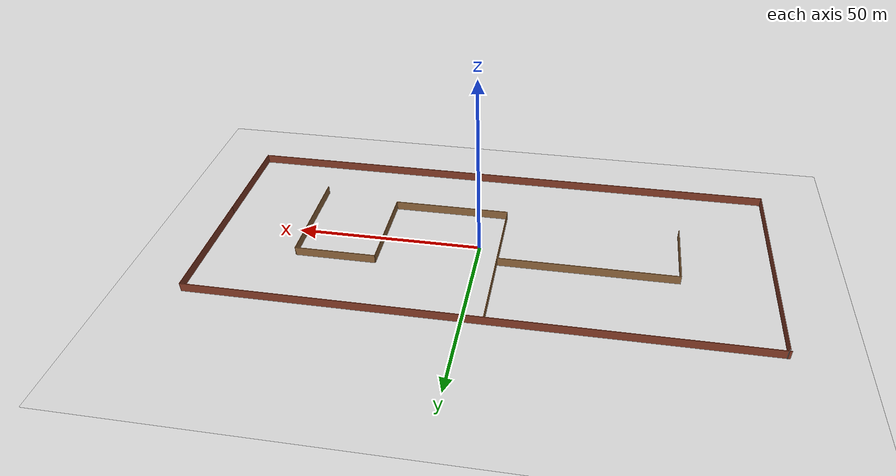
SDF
<sdf version="1.7">
 <world name="default">
  <light name="sun" type="directional">
   <pose>0 0 10 0 -0 0</pose>
   <diffuse>0.8 0.8 0.8 1</diffuse>
   <specular>0.2 0.2 0.2 1</specular>
   <attenuation>
    <range>1000</range>
    <constant>0.9</constant>
    <linear>0.01</linear>
    <quadratic>0.001</quadratic>
   </attenuation>
   <direction>-0.5 0.1 -0.9</direction>
   <spot><inner_angle>0</inner_angle><outer_angle>0</outer_angle><falloff>0</falloff></spot>
  </light>
  <model name="ground_plane">
   <static>1</static>
   <link name="link">
    <collision name="collision">
     <geometry><plane><normal>0 0 1</normal><size>100 100</size></plane></geometry>
     <surface>
      <contact><collide_bitmask>65535</collide_bitmask></contact>
      <friction><ode><mu>100</mu><mu2>50</mu2></ode></friction>
     </surface>
    </collision>
    <visual name="visual">
     <cast_shadows>0</cast_shadows>
     <geometry><plane><normal>0 0 1</normal><size>100 100</size></plane></geometry>
     <material>
      <script><uri>file://media/materials/scripts/gazebo.material</uri><name>Gazebo/Grey</name></script>
     </material>
    </visual>
   </link>
  </model>
  <gravity>0 0 -9.8</gravity>
  <magnetic_field>6e-06 2.3e-05 -4.2e-05</magnetic_field>
  <atmosphere type="adiabatic"/>
  <physics type="ode">
   <max_step_size>0.001</max_step_size>
   <real_time_factor>1</real_time_factor>
   <real_time_update_rate>1000</real_time_update_rate>
  </physics>
  <scene><ambient>0.4 0.4 0.4 1</ambient><background>0.7 0.7 0.7 1</background><shadows>1</shadows></scene>
  <spherical_coordinates>
   <surface_model>EARTH_WGS84</surface_model>
   <latitude_deg>0</latitude_deg>
   <longitude_deg>0</longitude_deg>
   <elevation>0</elevation>
   <heading_deg>0</heading_deg>
  </spherical_coordinates>
  <model name="random">
   <pose>-2.6678 8.8372 0 0 -0 0</pose>
   <link name="Wall_10">
    <collision name="Wall_10_Collision">
     <geometry><box><size>148 0.15 2.5</size></box></geometry>
     <pose>0 0 1.25 0 -0 0</pose>
    </collision>
    <visual name="Wall_10_Visual">
     <pose>0 0 1.25 0 -0 0</pose>
     <geometry><box><size>148 0.15 2.5</size></box></geometry>
     <material>
      <script><uri>file://media/materials/scripts/gazebo.material</uri><name>Gazebo/Bricks</name></script>
      <ambient>1 1 1 1</ambient>
     </material>
     <meta><layer>0</layer></meta>
    </visual>
    <pose>-4e-06 19.2126 0 0 -0 0</pose>
   </link>
   <link name="Wall_11">
    <collision name="Wall_11_Collision">
     <geometry><box><size>32.25 0.15 2.5</size></box></geometry>
     <pose>0 0 1.25 0 -0 0</pose>
    </collision>
    <visual name="Wall_11_Visual">
     <pose>0 0 1.25 0 -0 0</pose>
     <geometry><box><size>32.25 0.15 2.5</size></box></geometry>
     <material>
      <script><uri>file://media/materials/scripts/gazebo.material</uri><name>Gazebo/Bricks</name></script>
      <ambient>1 1 1 1</ambient>
     </material>
     <meta><layer>0</layer></meta>
    </visual>
    <pose>73.925 3.16256 0 0 -0 -1.5708</pose>
   </link>
   <link name="Wall_12">
    <collision name="Wall_12_Collision">
     <geometry><box><size>27.25 0.15 2.5</size></box></geometry>
     <pose>0 0 1.25 0 -0 0</pose>
    </collision>
    <visual name="Wall_12_Visual">
     <pose>0 0 1.25 0 -0 0</pose>
     <geometry><box><size>27.25 0.15 2.5</size></box></geometry>
     <material>
      <script><uri>file://media/materials/scripts/gazebo.material</uri><name>Gazebo/Bricks</name></script>
      <ambient>1 1 1 1</ambient>
     </material>
     <meta><layer>0</layer></meta>
    </visual>
    <pose>73.925 -26.4374 0 0 -0 -1.5708</pose>
   </link>
   <link name="Wall_13">
    <collision name="Wall_13_Collision">
     <geometry><box><size>147.75 0.15 2.5</size></box></geometry>
     <pose>0 0 1.25 0 -0 0</pose>
    </collision>
    <visual name="Wall_13_Visual">
     <pose>0 0 1.25 0 -0 0</pose>
     <geometry><box><size>147.75 0.15 2.5</size></box></geometry>
     <material>
      <script><uri>file://media/materials/scripts/gazebo.material</uri><name>Gazebo/Bricks</name></script>
      <ambient>1 1 1 1</ambient>
     </material>
     <meta><layer>0</layer></meta>
    </visual>
    <pose>0.124996 -39.9874 0 0 -0 3.14159</pose>
   </link>
   <link name="Wall_14">
    <collision name="Wall_14_Collision">
     <geometry><box><size>58.75 0.15 2.5</size></box></geometry>
     <pose>0 0 1.25 0 -0 0</pose>
    </collision>
    <visual name="Wall_14_Visual">
     <pose>0 0 1.25 0 -0 0</pose>
     <geometry><box><size>58.75 0.15 2.5</size></box></geometry>
     <material>
      <script><uri>file://media/materials/scripts/gazebo.material</uri><name>Gazebo/Bricks</name></script>
      <ambient>1 1 1 1</ambient>
     </material>
     <meta><layer>0</layer></meta>
    </visual>
    <pose>-73.675 -10.6874 0 0 -0 1.5708</pose>
   </link>
   <link name="Wall_15">
    <collision name="Wall_15_Collision">
     <geometry><box><size>1 0.15 2.5</size></box></geometry>
     <pose>0 0 1.25 0 -0 0</pose>
    </collision>
    <visual name="Wall_15_Visual">
     <pose>0 0 1.25 0 -0 0</pose>
     <geometry><box><size>1 0.15 2.5</size></box></geometry>
     <material>
      <script><uri>file://media/materials/scripts/gazebo.material</uri><name>Gazebo/Grey</name></script>
      <ambient>1 1 1 1</ambient>
     </material>
     <meta><layer>0</layer></meta>
    </visual>
    <pose>-73.4625 18.9806 0 0 -0 1.0472</pose>
   </link>
   <link name="Wall_17">
    <collision name="Wall_17_Collision">
     <geometry><box><size>41.75 0.15 2.5</size></box></geometry>
     <pose>0 0 1.25 0 -0 0</pose>
    </collision>
    <visual name="Wall_17_Visual">
     <pose>0 0 1.25 0 -0 0</pose>
     <geometry><box><size>41.75 0.15 2.5</size></box></geometry>
     <material>
      <script><uri>file://media/materials/scripts/gazebo.material</uri><name>Gazebo/Wood</name></script>
      <ambient>1 1 1 1</ambient>
     </material>
     <meta><layer>0</layer></meta>
    </visual>
    <pose>-2.93024 -1.7618 0 0 -0 1.5708</pose>
   </link>
   <link name="Wall_21">
    <collision name="Wall_21_Collision">
     <geometry><box><size>31.75 0.15 2.5</size></box></geometry>
     <pose>0 0 1.25 0 -0 0</pose>
    </collision>
    <visual name="Wall_21_Visual">
     <pose>0 0 1.25 0 -0 0</pose>
     <geometry><box><size>31.75 0.15 2.5</size></box></geometry>
     <material>
      <script><uri>file://media/materials/scripts/gazebo.material</uri><name>Gazebo/Wood</name></script>
      <ambient>1 1 1 1</ambient>
     </material>
     <meta><layer>0</layer></meta>
    </visual>
    <pose>12.8698 -22.5618 0 0 -0 0</pose>
   </link>
   <link name="Wall_22">
    <collision name="Wall_22_Collision">
     <geometry><box><size>24 0.15 2.5</size></box></geometry>
     <pose>0 0 1.25 0 -0 0</pose>
    </collision>
    <visual name="Wall_22_Visual">
     <pose>0 0 1.25 0 -0 0</pose>
     <geometry><box><size>24 0.15 2.5</size></box></geometry>
     <material>
      <script><uri>file://media/materials/scripts/gazebo.material</uri><name>Gazebo/Wood</name></script>
      <ambient>1 1 1 1</ambient>
     </material>
     <meta><layer>0</layer></meta>
    </visual>
    <pose>28.6698 -10.6368 0 0 -0 1.5708</pose>
   </link>
   <link name="Wall_23">
    <collision name="Wall_23_Collision">
     <geometry><box><size>21.75 0.15 2.5</size></box></geometry>
     <pose>0 0 1.25 0 -0 0</pose>
    </collision>
    <visual name="Wall_23_Visual">
     <pose>0 0 1.25 0 -0 0</pose>
     <geometry><box><size>21.75 0.15 2.5</size></box></geometry>
     <material>
      <script><uri>file://media/materials/scripts/gazebo.material</uri><name>Gazebo/Wood</name></script>
      <ambient>1 1 1 1</ambient>
     </material>
     <meta><layer>0</layer></meta>
    </visual>
    <pose>39.4698 1.2882 0 0 -0 0</pose>
   </link>
   <link name="Wall_24">
    <collision name="Wall_24_Collision">
     <geometry><box><size>28.25 0.15 2.5</size></box></geometry>
     <pose>0 0 1.25 0 -0 0</pose>
    </collision>
    <visual name="Wall_24_Visual">
     <pose>0 0 1.25 0 -0 0</pose>
     <geometry><box><size>28.25 0.15 2.5</size></box></geometry>
     <material>
      <script><uri>file://media/materials/scripts/gazebo.material</uri><name>Gazebo/Wood</name></script>
      <ambient>1 1 1 1</ambient>
     </material>
     <meta><layer>0</layer></meta>
    </visual>
    <pose>50.2698 -12.7618 0 0 -0 -1.5708</pose>
   </link>
   <link name="Wall_26">
    <collision name="Wall_26_Collision">
     <geometry><box><size>47.25 0.15 2.5</size></box></geometry>
     <pose>0 0 1.25 0 -0 0</pose>
    </collision>
    <visual name="Wall_26_Visual">
     <pose>0 0 1.25 0 -0 0</pose>
     <geometry><box><size>47.25 0.15 2.5</size></box></geometry>
     <material>
      <script><uri>file://media/materials/scripts/gazebo.material</uri><name>Gazebo/Wood</name></script>
      <ambient>1 1 1 1</ambient>
     </material>
     <meta><layer>0</layer></meta>
    </visual>
    <pose>-26.4802 -2.64863 0 0 -0 3.14159</pose>
   </link>
   <link name="Wall_27">
    <collision name="Wall_27_Collision">
     <geometry><box><size>19 0.15 2.5</size></box></geometry>
     <pose>0 0 1.25 0 -0 0</pose>
    </collision>
    <visual name="Wall_27_Visual">
     <pose>0 0 1.25 0 -0 0</pose>
     <geometry><box><size>19 0.15 2.5</size></box></geometry>
     <material>
      <script><uri>file://media/materials/scripts/gazebo.material</uri><name>Gazebo/Wood</name></script>
      <ambient>1 1 1 1</ambient>
     </material>
     <meta><layer>0</layer></meta>
    </visual>
    <pose>-50.0302 -12.0736 0 0 -0 -1.5708</pose>
   </link>
   <static>1</static>
  </model>
 </world>
</sdf>
